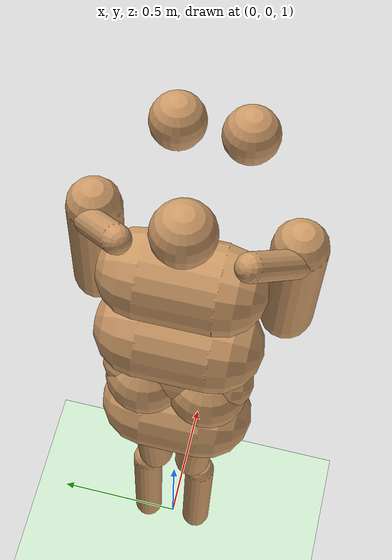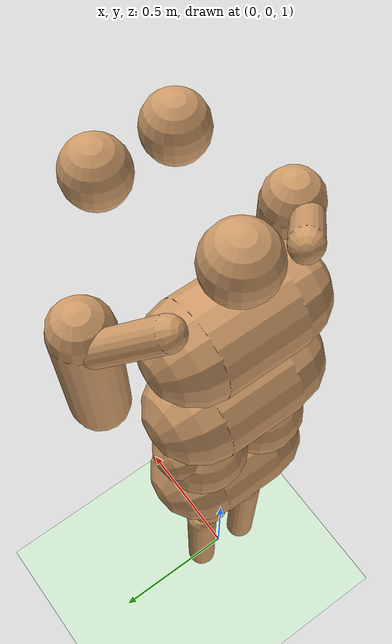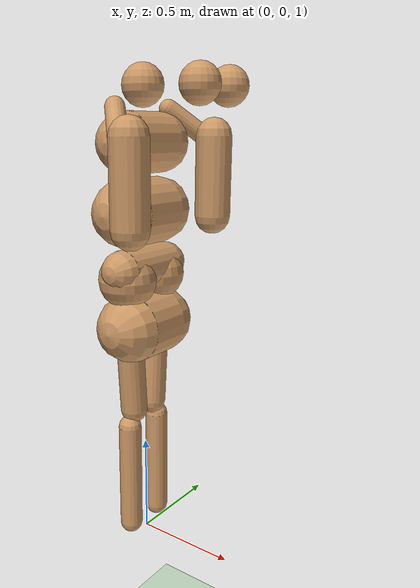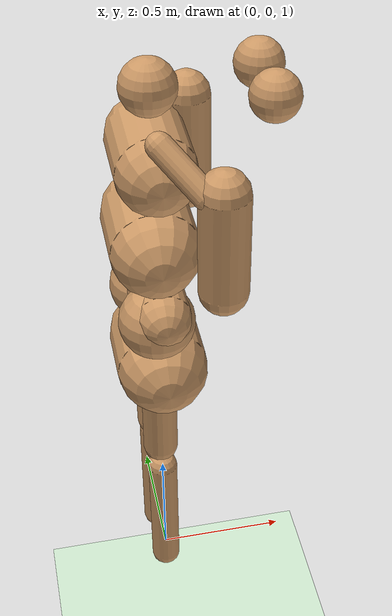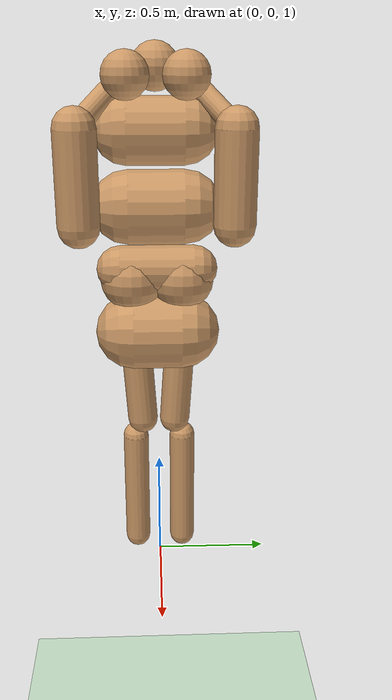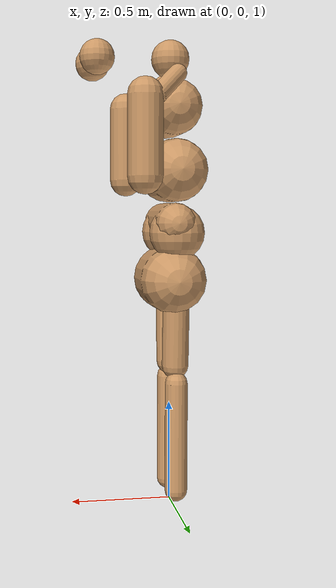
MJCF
<?xml version="1.0" ?>
<mujoco model="random_humanoid">
  <compiler angle="degree" inertiafromgeom="true"/>
  <default>
    <joint armature="1" damping="1" limited="true"/>
    <geom conaffinity="1" condim="1" contype="1" margin="0.001" material="geom" rgba="0.8 0.6 .4 1"/>
    <motor ctrllimited="true" ctrlrange="-.4 .4"/>
  </default>
  <option integrator="RK4" iterations="50" solver="PGS" timestep="0.003"/>
  <size nkey="5" nuser_geom="1"/>
  <visual>
    <map fogend="5" fogstart="3"/>
  </visual>
  <asset>
    <texture builtin="gradient" height="100" rgb1=".4 .5 .6" rgb2="0 0 0" type="skybox" width="100"/>
    <texture builtin="flat" height="1278" mark="cross" markrgb="1 1 1" name="texgeom" random="0.01" rgb1="0.8 0.6 0.4" rgb2="0.8 0.6 0.4" type="cube" width="127"/>
    <texture builtin="checker" height="100" name="texplane" rgb1="0 0 0" rgb2="0.8 0.8 0.8" type="2d" width="100"/>
    <material name="MatPlane" reflectance="0.5" shininess="1" specular="1" texrepeat="60 60" texture="texplane"/>
    <material name="geom" texture="texgeom" texuniform="true"/>
  </asset>
  <worldbody>
    <geom condim="3" friction="0.5315936670893011 .1 .1" type="plane" size="20 20 0.125" material="MatPlane" name="floor" pos="0 0 0" rgba="0.8 0.9 0.8 1"/>
    <body name="torso" pos="0 0 2.986416">
      <joint name="root" type="free" axis="0 1 0" armature="0.0" damping="0.0" stiffness="0.0"/>
      <geom name="torso1" pos="0 0 0" fromto="0 -0.116536 0 0 0.116536 0" size="0.136395" type="capsule"/>
      <geom name="head" pos="0 0 0.244467" size="0.095231" type="sphere"/>
      <geom name="uwaist" fromto="-0.012132 -0.11561 -0.306987 -0.012132 0.11561 -0.306987" size="0.155149" type="capsule"/>
      <body name="lwaist" pos="-0.000191 0 -0.567619">
        <joint name="abdomen_z" type="hinge" axis="0 0 1" armature="0.031026" damping="5.808712" stiffness="7.669154" range="-50.191013 49.056864"/>
        <joint name="abdomen_y" type="hinge" axis="0 1 0" armature="0.088956" damping="2.193426" stiffness="51.109861" range="-92.626769 35.190532"/>
        <geom name="lwaist1" type="capsule" fromto="-0.0 -0.156162 -0.0 0.0 0.156162 0.0" size="0.100077"/>
        <body name="pelvis" pos="0 0 -0.281477">
          <joint name="abdomen_x" type="hinge" axis="1 0 0" pos="0 0 0.206381" armature="0.094543" damping="3.282166" stiffness="24.238325" range="-45.647875 45.647875"/>
          <geom name="pelvis1" type="capsule" fromto="-0.0 -0.103452 -0.0 0.0 0.103452 0.0" size="0.165377"/>
          <body name="left_thigh" pos="-0.015156 0.106446 0.087729">
            <joint name="left_hip_x" type="hinge" axis="-1 0 0" armature="0.035422" damping="7.308159" stiffness="16.294453" range="-40.414994 11.16042"/>
            <joint name="left_hip_y" type="hinge" axis="0 1 0" armature="0.054032" damping="3.567601" stiffness="45.733609" range="-38.022653 41.172849"/>
            <joint name="left_hip_z" type="hinge" axis="0 0 -1" armature="0.054852" damping="1.691519" stiffness="47.860564" range="-124.274152 24.630554"/>
            <geom name="left_thigh1" type="capsule" fromto="0 0 0 0.0 -0.033721 -0.521345" size="0.066759"/>
            <body name="left_shin" pos="0 0 -0.606751">
              <joint name="left_knee" type="hinge" axis="1 0 0" armature="0.009214" damping="8.379477" stiffness="2.010979" range="-100.299528 -14.32432"/>
              <geom name="left_shin1" type="capsule" fromto="0 0 0 0.0 0.0 -0.544725" size="0.056827"/>
              <geom name="left_foot" pos="0 0 0.754053" size="0.137334" type="sphere" user="0"/>
            </body>
          </body>
          <body name="right_thigh" pos="-0.015156 -0.106446 0.087729">
            <joint name="right_hip_x" type="hinge" axis="1 0 0" armature="0.035422" damping="7.308159" stiffness="16.294453" range="-40.414994 11.16042"/>
            <joint name="right_hip_y" type="hinge" axis="0 1 0" armature="0.054032" damping="3.567601" stiffness="45.733609" range="-38.022653 41.172849"/>
            <joint name="right_hip_z" type="hinge" axis="0 0 1" armature="0.054852" damping="1.691519" stiffness="47.860564" range="-124.274152 24.630554"/>
            <geom name="right_thigh1" type="capsule" fromto="0 0 0 0.0 0.033721 -0.521345" size="0.066759"/>
            <body name="right_shin" pos="0 0 -0.606751">
              <joint name="right_knee" type="hinge" axis="1 0 0" armature="0.009214" damping="8.379477" stiffness="2.010979" range="-100.299528 -14.32432"/>
              <geom name="right_shin1" type="capsule" fromto="0 0 0 0.0 0.0 -0.544725" size="0.056827"/>
              <geom name="right_foot" pos="0 0 0.754053" size="0.137334" type="sphere" user="0"/>
            </body>
          </body>
        </body>
      </body>
      <body name="left_upper_arm" pos="0 0.187549 0.148903">
        <joint name="left_shoulder1" type="hinge" axis="2 -1 1" armature="0.012969" damping="1.413612" stiffness="20.301435" range="-92.122168 84.279241"/>
        <joint name="left_shoulder2" type="hinge" axis="0 1 1" armature="0.017923" damping="9.160915" stiffness="94.489678" range="-85.317382 89.538652"/>
        <geom name="left_upper_arm1" type="capsule" fromto="0 0 0 0.12124 0.12124 -0.12124" size="0.044078"/>
        <body name="left_lower_arm" pos="0.148816 0.148816 -0.148816">
          <joint name="left_elbow" type="hinge" axis="0 -1 -1" armature="0.001355" damping="5.44082" stiffness="2.098782" range="-84.894786 72.69781"/>
          <geom name="left_lower_arm1" type="capsule" fromto="0.028786 -0.028786 0.028786 0.028786 -0.028786 -0.344594" size="0.085398"/>
          <geom name="left_hand" pos="0.229645 -0.229645 0.229645" size="0.085091" type="sphere" user="0"/>
        </body>
      </body>
      <body name="right_upper_arm" pos="0 -0.187549 0.148903">
        <joint name="right_shoulder1" type="hinge" axis="2 1 1" armature="0.012969" damping="1.413612" stiffness="20.301435" range="-92.122168 84.279241"/>
        <joint name="right_shoulder2" type="hinge" axis="0 -1 1" armature="0.017923" damping="9.160915" stiffness="94.489678" range="-85.317382 89.538652"/>
        <geom name="right_upper_arm1" type="capsule" fromto="0 0 0 0.12124 -0.12124 -0.12124" size="0.044078"/>
        <body name="right_lower_arm" pos="0.148816 -0.148816 -0.148816">
          <joint name="right_elbow" type="hinge" axis="0 -1 1" armature="0.001355" damping="5.44082" stiffness="2.098782" range="-84.894786 72.69781"/>
          <geom name="right_lower_arm1" type="capsule" fromto="0.028786 0.028786 0.028786 0.028786 0.028786 -0.344594" size="0.085398"/>
          <geom name="right_hand" pos="0.229645 0.229645 0.229645" size="0.085091" type="sphere" user="0"/>
        </body>
      </body>
    </body>
  </worldbody>
  <tendon>
    <fixed name="left_hipknee">
      <joint coef="-0.743659" joint="left_hip_y"/>
      <joint coef="0.743659" joint="left_knee"/>
    </fixed>
    <fixed name="right_hipknee">
      <joint coef="-0.743659" joint="right_hip_y"/>
      <joint coef="0.743659" joint="right_knee"/>
    </fixed>
  </tendon>
  <actuator>
    <motor joint="abdomen_z" gear="55.225409" name="abdomen_z"/>
    <motor joint="abdomen_y" gear="55.225409" name="abdomen_y"/>
    <motor joint="abdomen_x" gear="55.225409" name="abdomen_x"/>
    <motor joint="left_hip_x" gear="98.562595" name="left_hip_x"/>
    <motor joint="left_hip_y" gear="237.56071" name="left_hip_y"/>
    <motor joint="left_hip_z" gear="54.840307" name="left_hip_z"/>
    <motor joint="left_knee" gear="206.573816" name="left_knee"/>
    <motor joint="left_shoulder1" gear="42.529014" name="left_shoulder1"/>
    <motor joint="left_shoulder2" gear="26.607782" name="left_shoulder2"/>
    <motor joint="left_elbow" gear="47.377464" name="left_elbow"/>
    <motor joint="right_hip_x" gear="98.562595" name="right_hip_x"/>
    <motor joint="right_hip_y" gear="237.56071" name="right_hip_y"/>
    <motor joint="right_hip_z" gear="54.840307" name="right_hip_z"/>
    <motor joint="right_knee" gear="206.573816" name="right_knee"/>
    <motor joint="right_shoulder1" gear="42.529014" name="right_shoulder1"/>
    <motor joint="right_shoulder2" gear="26.607782" name="right_shoulder2"/>
    <motor joint="right_elbow" gear="47.377464" name="right_elbow"/>
  </actuator>
</mujoco>
